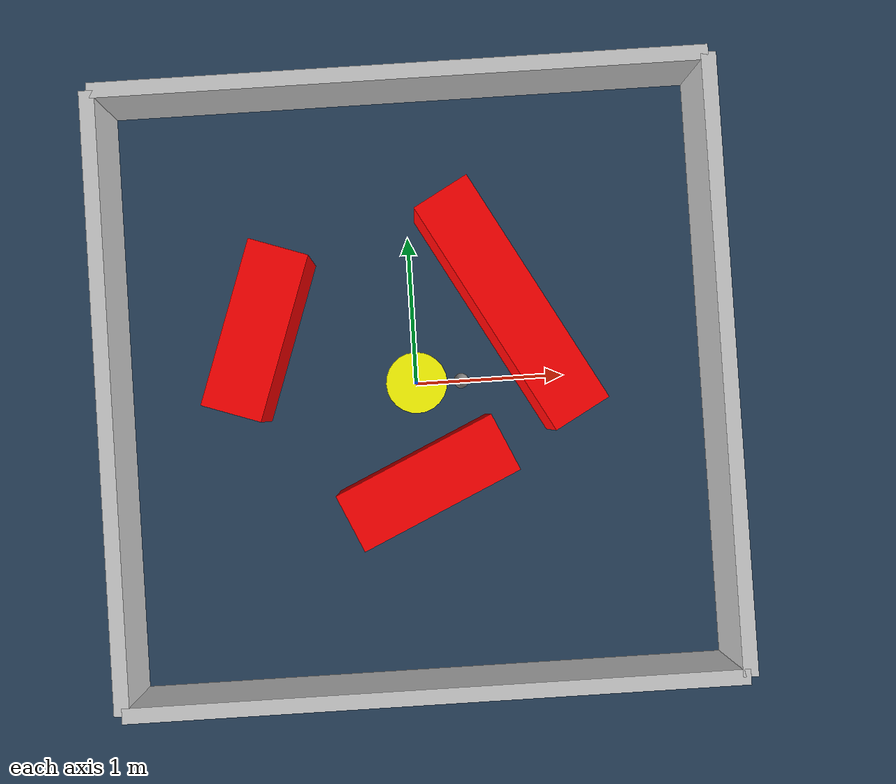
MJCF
<?xml version="1.0" ?>
<mujoco model="generated_environment">
  <option timestep="0.01" integrator="RK4" cone="elliptic"/>
  <default>
    <geom density="1"/>
  </default>
  <asset>
    <texture builtin="gradient" height="3072" rgb1="0.3 0.5 0.7" rgb2="0 0 0" type="skybox" width="512"/>
    <texture builtin="checker" height="300" mark="edge" markrgb="0.8 0.8 0.8" name="groundplane" rgb1="0.2 0.3 0.4" rgb2="0.1 0.2 0.3" type="2d" width="300"/>
    <material name="groundplane" reflectance="0.2" texrepeat="5 5" texture="groundplane" texuniform="true"/>
    <material name="robot" rgba="0.0 1.0 0.0 1"/>
  </asset>
  <worldbody>
    <light dir="0 0 -1" directional="true" pos="0 0 1.5"/>
    <geom condim="4" friction="1.0 0.005 0.001" material="groundplane" name="floor" size="0 0 0.05" type="plane"/>
    <body name="walls">
      <geom name="wall_1" condim="4" pos="-2.0 0.0 0.3" rgba="0.800000011920929 0.800000011920929 0.800000011920929 1.0" size="0.05 2.0 0.3" type="box"/>
      <geom name="wall_2" condim="4" pos="2.0 0.0 0.3" rgba="0.800000011920929 0.800000011920929 0.800000011920929 1.0" size="0.05 2.0 0.3" type="box"/>
      <geom name="wall_3" condim="4" pos="0.0 -2.0 0.3" rgba="0.800000011920929 0.800000011920929 0.800000011920929 1.0" size="2.0 0.05 0.3" type="box"/>
      <geom name="wall_4" condim="4" pos="0.0 2.0 0.3" rgba="0.800000011920929 0.800000011920929 0.800000011920929 1.0" size="2.0 0.05 0.3" type="box"/>
    </body>
    <body name="robot">
      <joint name="joint_x" type="slide" pos="0 0 0" axis="1 0 0"/>
      <joint name="joint_y" type="slide" pos="0 0 0" axis="0 1 0"/>
      <geom name="robot" type="sphere" pos="0.3 0.0 0.2" size="0.05" mass="5." friction="1.0 0.005 0.0001" condim="4" rgba="0.5 0.5 0.5 1.0"/>
      <site name="sensor_ball"/>
    </body>
    <body name="obstacle_movable_1">
      <geom name="obstacle_movable_1" condim="4" pos="0.0 0.0 0.2" euler="0 0 0.0" friction="1.0 0.005 0.001" rgba="1.0 1.0 0.0 1.0" size="0.2 0.2 0.0" type="cylinder" mass="0.1"/>
      <joint type="free"/>
    </body>
    <body name="obstacle_2_static">
      <geom name="obstacle_2_static" condim="4" pos="0.032933996072330496 -0.6456960020424993 0.3" euler="0 0 24.343867038916706" friction="1.0 0.005 0.001" rgba="1 0 0 1" size="0.560671579805331 0.2 0.3" type="box"/>
    </body>
    <body name="obstacle_3_static">
      <geom name="obstacle_3_static" condim="4" pos="0.6351583277664803 0.4727320694846029 0.3" euler="0 0 298.9838562028969" friction="1.0 0.005 0.001" rgba="1 0 0 1" size="0.8449225912499692 0.2 0.3" type="box"/>
    </body>
    <body name="obstacle_4_static">
      <geom name="obstacle_4_static" condim="4" pos="-1.0132339914354618 0.3976791733439866 0.3" euler="0 0 70.81568125786094" friction="1.0 0.005 0.001" rgba="1 0 0 1" size="0.5551450531079694 0.2 0.3" type="box"/>
    </body>
  </worldbody>
  <actuator>
    <motor name="actuator_x" joint="joint_x" gear="1" ctrlrange="-1 1"/>
    <motor name="actuator_y" joint="joint_y" gear="1" ctrlrange="-1 1"/>
  </actuator>
</mujoco>
